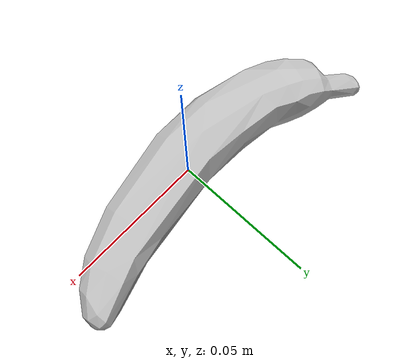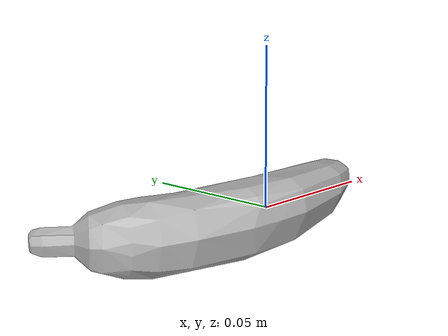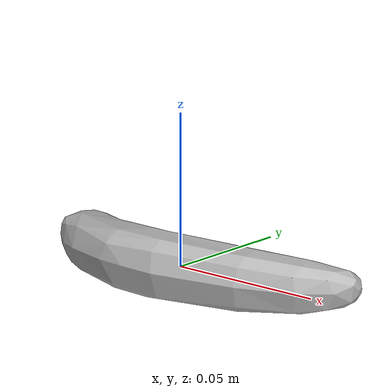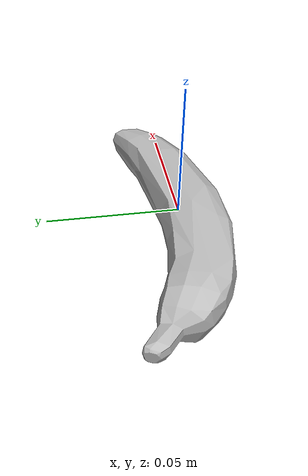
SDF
<?xml version='1.0' ?>
<sdf version="1.6">
    <model name="Banana">
        <static>false</static>
        <link name="link">
            <inertial>
                <mass>0.118</mass>
                <inertia>
                    <ixx>0.00013585</ixx>
                    <ixy>0</ixy>
                    <ixz>0</ixz>
                    <iyy>0.00013585</iyy>
                    <iyz>0</iyz>
                    <izz>0.00001227</izz>
                </inertia>
            </inertial>

            <collision name="collision">
                <pose>0 0 0 0 0 1.5708</pose>
                <geometry>
                    <mesh>
                        <uri>meshes/Banana.dae</uri>
                    </mesh>
                </geometry>
            </collision>
            <visual name="visual">
                <pose>0 0 0 0 0 1.5708</pose>
                <geometry>
                    <mesh>
                        <uri>meshes/Banana.dae</uri>
                    </mesh>
                </geometry>
            </visual>
        </link>
    </model>
</sdf>
